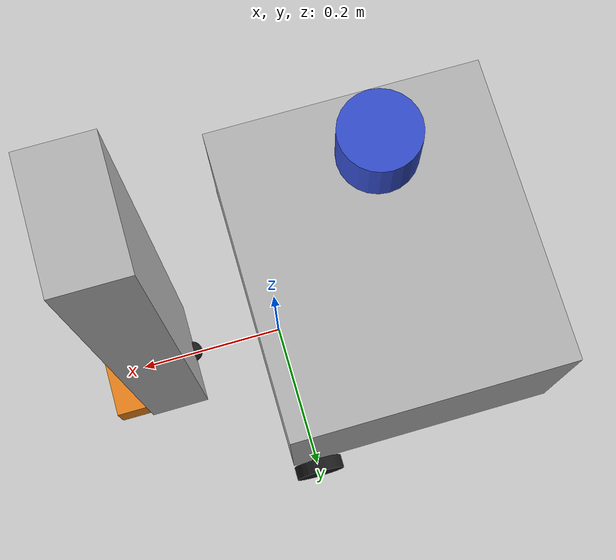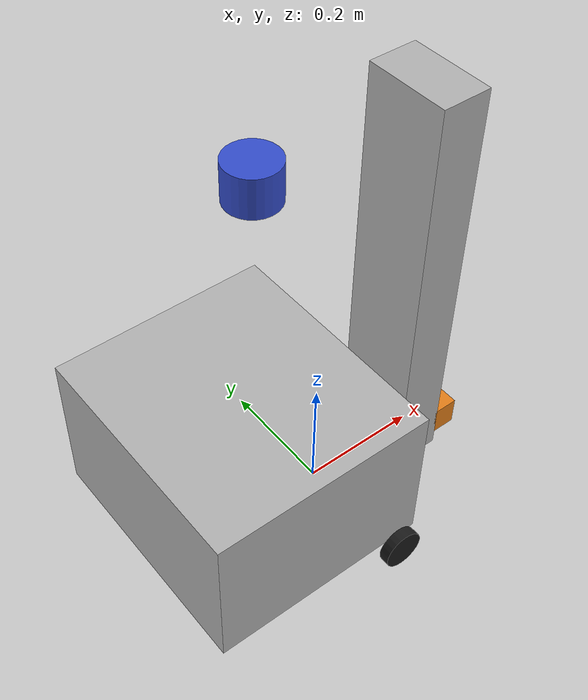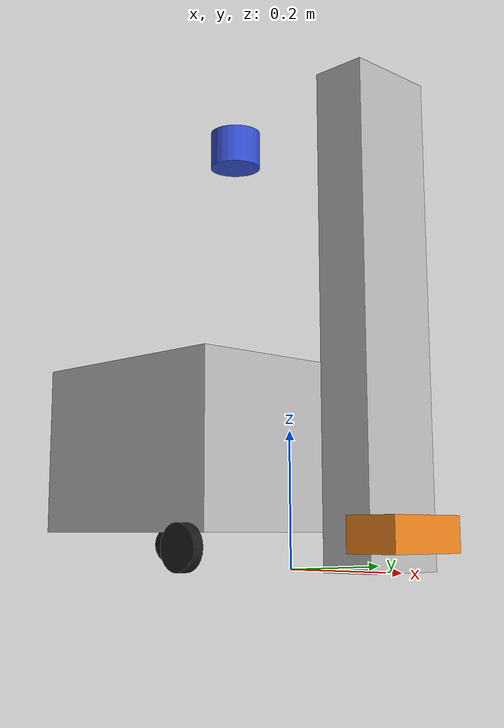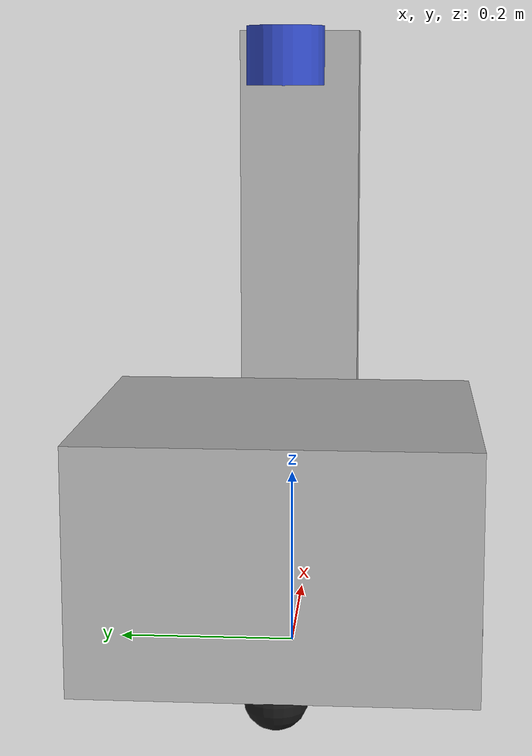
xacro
<?xml version="1.0"?>
<robot name="delivery_robot" xmlns:xacro="http://www.ros.org/wiki/xacro">

  <!-- 현장 장착값 오버라이드. 기본값은 HW팀 r1.urdf v2(2026-09-13) 기준. -->
  <xacro:arg name="laser_x" default="-0.117"/>
  <xacro:arg name="laser_y" default="0.0"/>
  <xacro:arg name="laser_z" default="0.667"/>
  <xacro:arg name="laser_roll" default="0.0"/>
  <xacro:arg name="laser_pitch" default="0.0"/>
  <xacro:arg name="laser_yaw" default="0.0"/>

  <!-- ===== 공통 재질(색상) ===== -->
  <material name="grey">  <color rgba="0.7 0.7 0.7 1.0"/></material>
  <material name="black"> <color rgba="0.1 0.1 0.1 1.0"/></material>
  <material name="blue">  <color rgba="0.2 0.3 0.8 1.0"/></material>
  <material name="orange"><color rgba="0.9 0.5 0.1 1.0"/></material>

  <!-- ============================================================
       base_footprint : 바닥 투영 프레임 (Nav2/odom 기준점)
       ============================================================ -->
  <link name="base_footprint"/>

  <joint name="base_joint" type="fixed">
    <parent link="base_footprint"/>
    <child  link="base_link"/>
    <!-- ★SIM 접지 클리어런스 0.02m. 원본은 z=0 이라 섀시/마스트 바닥이
         바퀴 접지면과 같은 평면 -> 섀시가 바닥에 깔려 바퀴 헛돎.
         본체를 0.02 들어올리고 아래에서 바퀴/캐스터를 같은 양 내려 접지 유지. -->
    <origin xyz="0 0 0" rpy="0 0 0"/>  <!-- r1 v2: 섀시 바닥 z=0.053 이라 들어올림 보정 불필요 -->
  </joint>

  <!-- ============================================================
       base_link : 본체(섀시 400x300x250)
       ============================================================ -->
  <link name="base_link">
    <visual>
      <origin xyz="-0.147 0 0.178" rpy="0 0 0"/>
      <geometry><box size="0.360 0.400 0.250"/></geometry>
      <material name="grey"/>
    </visual>
    <collision>
      <origin xyz="-0.147 0 0.178" rpy="0 0 0"/>
      <geometry><box size="0.360 0.400 0.250"/></geometry>
    </collision>
    <inertial>
      <origin xyz="-0.147 0 0.178" rpy="0 0 0"/>
      <mass value="8.0"/>
      <inertia ixx="0.1483" ixy="0" ixz="0"
                            iyy="0.1281" iyz="0"
                                         izz="0.1931"/>
    </inertial>
  </link>

  <!-- ============================================================
       구동 바퀴 (지름 66 -> 반지름 0.033), 트랙폭 0.4194 (r1 v2)
       ============================================================ -->
  <link name="left_wheel">
    <visual>
      <origin xyz="0 0 0" rpy="1.5708 0 0"/>
      <geometry><cylinder radius="0.033" length="0.0178"/></geometry>
      <material name="black"/>
    </visual>
    <collision>
      <origin xyz="0 0 0" rpy="1.5708 0 0"/>
      <geometry><cylinder radius="0.033" length="0.0178"/></geometry>
    </collision>
    <inertial>
      <mass value="0.3"/>
      <inertia ixx="9.7e-5" ixy="0" ixz="0"
                            iyy="1.6e-4" iyz="0"
                                         izz="9.7e-5"/>
    </inertial>
  </link>
  <joint name="left_wheel_joint" type="continuous">
    <parent link="base_link"/>
    <child  link="left_wheel"/>
    <origin xyz="0 0.2097 0.033" rpy="0 0 0"/>
    <axis xyz="0 1 0"/>
    <dynamics damping="0.05" friction="0.3"/>  <!-- ★SIM 무명령 활주 제동 (§1.22) — max_wheel_torque 40 대비 미미 -->
  </joint>

  <link name="right_wheel">
    <visual>
      <origin xyz="0 0 0" rpy="1.5708 0 0"/>
      <geometry><cylinder radius="0.033" length="0.0178"/></geometry>
      <material name="black"/>
    </visual>
    <collision>
      <origin xyz="0 0 0" rpy="1.5708 0 0"/>
      <geometry><cylinder radius="0.033" length="0.0178"/></geometry>
    </collision>
    <inertial>
      <mass value="0.3"/>
      <inertia ixx="9.7e-5" ixy="0" ixz="0"
                            iyy="1.6e-4" iyz="0"
                                         izz="9.7e-5"/>
    </inertial>
  </link>
  <joint name="right_wheel_joint" type="continuous">
    <parent link="base_link"/>
    <child  link="right_wheel"/>
    <origin xyz="0 -0.2097 0.033" rpy="0 0 0"/>
    <axis xyz="0 1 0"/>
    <dynamics damping="0.05" friction="0.3"/>  <!-- ★SIM 무명령 활주 제동 (§1.22) -->
  </joint>

  <!-- ============================================================
       볼 캐스터 : 후면, fixed + 낮은 마찰 구로 단순화
       ============================================================ -->
  <link name="caster_wheel">
    <visual>
      <origin xyz="0 0 0" rpy="0 0 0"/>
      <geometry><sphere radius="0.033"/></geometry>
      <material name="black"/>
    </visual>
    <collision>
      <origin xyz="0 0 0" rpy="0 0 0"/>
      <geometry><sphere radius="0.033"/></geometry>
    </collision>
    <inertial>
      <mass value="0.1"/>
      <inertia ixx="9e-6" ixy="0" ixz="0" iyy="9e-6" iyz="0" izz="9e-6"/>
    </inertial>
  </link>
  <joint name="caster_joint" type="fixed">
    <parent link="base_link"/>
    <child  link="caster_wheel"/>
    <origin xyz="-0.2575 0 0.033" rpy="0 0 0"/>
  </joint>

  <!-- ★SIM 전방 캐스터 추가. 원본은 후방 캐스터 1개뿐이고 마스트가 앞에 있어
       무게중심(COM_x≈+10.7mm)이 구동축(x=0)보다 앞 -> 지지 삼각형 밖 -> 전방 전복.
       기존 검증 모델처럼 앞/뒤 캐스터 2개로 안정화. 실제 HW 도 전방 지지 필요. -->
  <link name="caster_wheel_front">
    <visual>
      <origin xyz="0 0 0" rpy="0 0 0"/>
      <geometry><sphere radius="0.015"/></geometry>
      <material name="black"/>
    </visual>
    <collision>
      <origin xyz="0 0 0" rpy="0 0 0"/>
      <geometry><sphere radius="0.015"/></geometry>
    </collision>
    <inertial>
      <mass value="0.1"/>
      <inertia ixx="9e-6" ixy="0" ixz="0" iyy="9e-6" iyz="0" izz="9e-6"/>
    </inertial>
  </link>
  <joint name="caster_front_joint" type="fixed">
    <parent link="base_link"/>
    <child  link="caster_wheel_front"/>
    <origin xyz="0.1285 0 0.015" rpy="0 0 0"/>  <!-- ★SIM base z=0 에 맞춰 접지 유지 -->
  </joint>

  <link name="laser">
    <visual>
      <origin xyz="0 0 0" rpy="0 0 0"/>
      <geometry><cylinder radius="0.04" length="0.06"/></geometry>
      <material name="blue"/>
    </visual>
    <collision>
      <origin xyz="0 0 0" rpy="0 0 0"/>
      <geometry><cylinder radius="0.04" length="0.06"/></geometry>
    </collision>
    <inertial>
      <mass value="0.2"/>
      <inertia ixx="1.4e-4" ixy="0" ixz="0" iyy="1.4e-4" iyz="0" izz="1.6e-4"/>
    </inertial>
  </link>
  <joint name="laser_joint" type="fixed">
    <parent link="base_link"/>
    <child  link="laser"/>
    <origin xyz="$(arg laser_x) $(arg laser_y) $(arg laser_z)"
            rpy="$(arg laser_roll) $(arg laser_pitch) $(arg laser_yaw)"/>
  </joint>

  <!-- ============================================================
       리드스크류 마스트 (지게 총높이 700)
       ============================================================ -->
  <link name="lead_screw_base">
    <visual>
      <origin xyz="0 0 0.350" rpy="0 0 0"/>
      <geometry><box size="0.080 0.140 0.700"/></geometry>
      <material name="grey"/>
    </visual>
    <collision>
      <origin xyz="0 0 0.350" rpy="0 0 0"/>
      <geometry><box size="0.080 0.140 0.700"/></geometry>
    </collision>
    <inertial>
      <origin xyz="0 0 0.350" rpy="0 0 0"/>
      <mass value="1.5"/>
      <inertia ixx="0.0620" ixy="0" ixz="0" iyy="0.0620" iyz="0" izz="0.0016"/>
    </inertial>
  </link>
  <joint name="lead_screw_base_joint" type="fixed">
    <parent link="base_link"/>
    <child  link="lead_screw_base"/>
    <origin xyz="0.165 0 0" rpy="0 0 0"/>
  </joint>

  <!-- ============================================================
       지게팔 캐리어 : prismatic (z). ★SIM joint_state 플러그인이 상태 publish.
       ============================================================ -->
  <link name="lead_screw_carrier">
    <visual>
      <origin xyz="0.04 0 0" rpy="0 0 0"/>
      <geometry><box size="0.080 0.140 0.050"/></geometry>
      <material name="orange"/>
    </visual>
    <collision>
      <origin xyz="0.04 0 0" rpy="0 0 0"/>
      <geometry><box size="0.080 0.140 0.050"/></geometry>
    </collision>
    <inertial>
      <origin xyz="0.04 0 0" rpy="0 0 0"/>
      <mass value="0.5"/>
      <inertia ixx="0.00092" ixy="0" ixz="0" iyy="0.00037" iyz="0" izz="0.00108"/>
    </inertial>
  </link>
  <joint name="lift_joint" type="prismatic">
    <parent link="lead_screw_base"/>
    <child  link="lead_screw_carrier"/>
    <origin xyz="0 0 0.05" rpy="0 0 0"/>
    <axis xyz="0 0 1"/>
    <limit lower="0.0" upper="0.5" effort="50" velocity="0.05"/>
    <dynamics damping="1.0" friction="20.0"/>
  </joint>

  <!-- ============================================================
       ★SIM 이하 전부 Gazebo 시뮬 전용 추가 블록
       ============================================================ -->

  <!-- 바퀴 마찰 (없으면 헛바퀴) -->
  <gazebo reference="left_wheel">
    <mu1>100.0</mu1><mu2>100.0</mu2>
    <kp>1000000.0</kp><kd>100.0</kd>
    <minDepth>0.001</minDepth><maxVel>0.0</maxVel>
    <fdir1>0 0 1</fdir1>
    <material>Gazebo/Black</material>
  </gazebo>
  <gazebo reference="right_wheel">
    <mu1>100.0</mu1><mu2>100.0</mu2>
    <kp>1000000.0</kp><kd>100.0</kd>
    <minDepth>0.001</minDepth><maxVel>0.0</maxVel>
    <fdir1>0 0 1</fdir1>
    <material>Gazebo/Black</material>
  </gazebo>

  <gazebo reference="caster_wheel">
    <mu1>0.5</mu1><mu2>0.5</mu2>
    <kp>1000000.0</kp><kd>100.0</kd>
    <minDepth>0.001</minDepth><maxVel>0.0</maxVel>
    <material>Gazebo/Black</material>
  </gazebo>
  <gazebo reference="caster_wheel_front">
    <mu1>0.5</mu1><mu2>0.5</mu2>
    <kp>1000000.0</kp><kd>100.0</kd>
    <minDepth>0.001</minDepth><maxVel>0.0</maxVel>
    <material>Gazebo/Black</material>
  </gazebo>

  <gazebo reference="base_link">
    <mu1>0.1</mu1><mu2>0.1</mu2>
    <material>Gazebo/Grey</material>
  </gazebo>
  <gazebo reference="lead_screw_base"><material>Gazebo/Grey</material></gazebo>
  <gazebo reference="lead_screw_carrier"><material>Gazebo/Orange</material></gazebo>
  <gazebo reference="laser"><material>Gazebo/Blue</material></gazebo>

  <!-- 차동 구동 (트랙폭/바퀴지름은 원본 실측값) -->
  <gazebo>
    <plugin name="diff_drive" filename="libgazebo_ros_diff_drive.so">
      <ros><namespace>/</namespace></ros>
      <update_rate>30</update_rate>
      <left_joint>left_wheel_joint</left_joint>
      <right_joint>right_wheel_joint</right_joint>
      <wheel_separation>0.4194</wheel_separation>
      <wheel_diameter>0.066</wheel_diameter>
      <max_wheel_torque>40.0</max_wheel_torque>          <!-- ★SIM 0.5m/s 가속 여유 -->
      <max_wheel_acceleration>8.0</max_wheel_acceleration>
      <publish_odom>true</publish_odom>
      <publish_odom_tf>true</publish_odom_tf>
      <publish_wheel_tf>true</publish_wheel_tf>
      <odometry_frame>odom</odometry_frame>
      <robot_base_frame>base_footprint</robot_base_frame>
    </plugin>
  </gazebo>

  <!-- 조인트 상태 publish (바퀴 + 리프트) -->
  <gazebo>
    <plugin name="joint_state_publisher" filename="libgazebo_ros_joint_state_publisher.so">
      <ros><namespace>/</namespace></ros>
      <update_rate>30</update_rate>
      <joint_name>left_wheel_joint</joint_name>
      <joint_name>right_wheel_joint</joint_name>
      <joint_name>lift_joint</joint_name>
    </plugin>
  </gazebo>

  <gazebo>
    <plugin name="lift_trajectory" filename="libgazebo_ros_joint_pose_trajectory.so">
      <ros>
        <namespace>/</namespace>
        <remapping>set_joint_trajectory:=set_lift_trajectory</remapping>
      </ros>
      <update_rate>10</update_rate>
    </plugin>
  </gazebo>

  <!-- LiDAR 센서 (RPLiDAR A1 근사: 360도, 8m), frame_name=laser -->
  <gazebo reference="laser">
    <sensor name="lidar" type="ray">
      <always_on>true</always_on>
      <visualize>true</visualize>
      <update_rate>10</update_rate>
      <ray>
        <scan><horizontal>
          <samples>360</samples><resolution>1</resolution>
          <min_angle>-3.14159</min_angle><max_angle>3.14159</max_angle>
        </horizontal></scan>
        <range><min>0.15</min><max>8.0</max><resolution>0.01</resolution></range>
        <noise><type>gaussian</type><mean>0.0</mean><stddev>0.01</stddev></noise>
      </ray>
      <plugin name="lidar_plugin" filename="libgazebo_ros_ray_sensor.so">
        <ros><remapping>~/out:=scan</remapping></ros>
        <output_type>sensor_msgs/LaserScan</output_type>
        <frame_name>laser</frame_name>
      </plugin>
    </sensor>
  </gazebo>

</robot>
